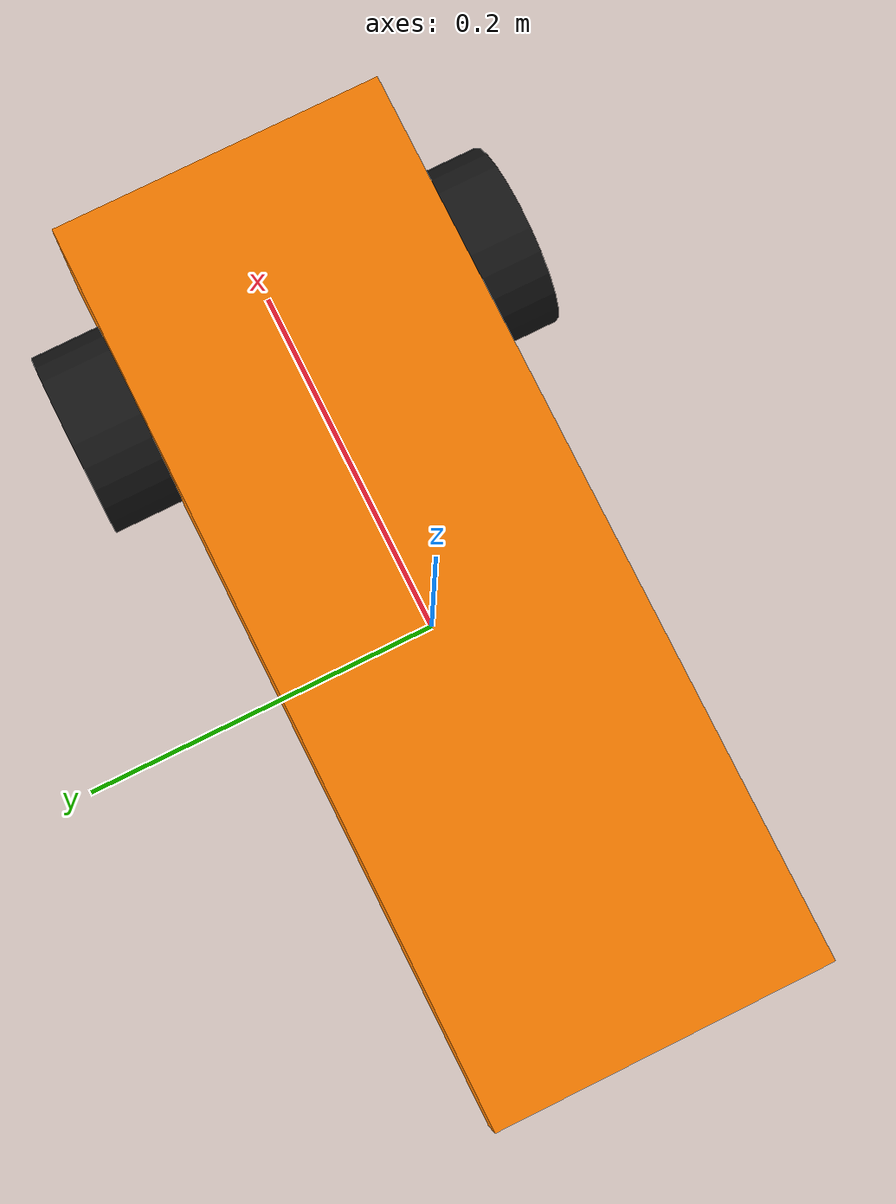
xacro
<?xml version='1.0'?>

<robot name="racer_test"
  xmlns:xacro="http://www.ros.org/wiki/xacro">

  <xacro:arg name="simulation" default="false"/>

  <xacro:if value="$(arg simulation)">
    <xacro:include filename="$(find racer_description)/urdf/racer_plugins.gazebo" />
  </xacro:if>

  <xacro:property name="bodySizeL" value="0.49"/>
  <xacro:property name="bodySizeB" value="0.18"/>
  <xacro:property name="bodySizeH" value="0.1"/>
  <xacro:property name="bodyMass" value="3.5"/>

  <xacro:property name="wheel_radius" value="0.05" />
  <xacro:property name="wheel_height" value="0.045" />
  <xacro:property name="wheel_mass" value="0.2" />

  <link name="base_link" />

  <joint name="base_link_joint" type="fixed">
    <origin xyz="0 0 0.05" rpy="0 0 0" />
    <parent link="base_link" />
    <child link="chassis" />
  </joint>

  <!--  Main Body with basic geometry -->
  <link name='chassis'>
    <inertial>
      <mass value="${bodyMass}"/>
      <origin xyz="0 0 ${wheel_height/2}" rpy="0 0 0"/>
      <inertia ixx="0.1" ixy="0" ixz="0" iyy="0.1" iyz="0" izz="0.1"/>
    </inertial>

    <collision name='collision'>
      <origin xyz="0 0 ${wheel_height/2}" rpy="0 0 0"/>
      <geometry>
        <box size="${bodySizeL} ${bodySizeB} ${bodySizeH}"/>
      </geometry>
    </collision>

    <visual>
      <origin xyz="0 0 ${wheel_height/2}" rpy="0 0 0"/>
      <geometry>
        <box size="${bodySizeL} ${bodySizeB} ${bodySizeH}"/>
      </geometry>
      <material name="orange">
        <color rgba="1.0 0.5 0.0 1.0"/>
      </material>
    </visual>
  </link>

  <gazebo reference="chassis">
    <material>Gazebo/Orange</material>
  </gazebo>

  <!-- Simple wheels -->
  <link name="left_wheel_front">
    <inertial>
      <mass value="${wheel_mass}" />
      <origin xyz="0 0 0" rpy="${90*pi/180} 0 0"/>
      <inertia ixx="0.01" ixy="0" ixz="0" iyy="0.01" iyz="0" izz="0.01"/>
    </inertial>

    <collision>
      <origin xyz="0 0 0" rpy="${90*pi/180} 0 0" />
      <geometry>
        <cylinder length="${wheel_height}" radius="${wheel_radius}" />
      </geometry>
    </collision>

    <visual>
      <origin xyz="0 0 0" rpy="${90*pi/180} 0 0" />
      <geometry>
        <cylinder length="${wheel_height}" radius="${wheel_radius}" />
      </geometry>
      <material name="black">
        <color rgba="0.1 0.1 0.1 1.0"/>
      </material>
    </visual>
  </link>

  <gazebo reference="left_wheel_front">
    <material>Gazebo/Black</material>
  </gazebo>

  <joint name="left_wheel_front_hinge" type="continuous">
    <parent link="chassis"/>
    <child link="left_wheel_front"/>
    <origin xyz="0.16 0.1055 0" rpy="0 0 0" />
    <axis xyz="0 1 0" rpy="0 0 0" />
    <limit effort="20" velocity="500"/>
  </joint>

  <!-- Right front wheel -->
  <link name="right_wheel_front">
    <inertial>
      <mass value="${wheel_mass}" />
      <origin xyz="0 0 0" rpy="${90*pi/180} 0 0"/>
      <inertia ixx="0.01" ixy="0" ixz="0" iyy="0.01" iyz="0" izz="0.01"/>
    </inertial>

    <collision>
      <origin xyz="0 0 0" rpy="${90*pi/180} 0 0" />
      <geometry>
        <cylinder length="${wheel_height}" radius="${wheel_radius}" />
      </geometry>
    </collision>

    <visual>
      <origin xyz="0 0 0" rpy="${90*pi/180} 0 0" />
      <geometry>
        <cylinder length="${wheel_height}" radius="${wheel_radius}" />
      </geometry>
      <material name="black">
        <color rgba="0.1 0.1 0.1 1.0"/>
      </material>
    </visual>
  </link>

  <gazebo reference="right_wheel_front">
    <material>Gazebo/Black</material>
  </gazebo>

  <joint name="right_wheel_front_hinge" type="continuous">
    <parent link="chassis"/>
    <child link="right_wheel_front"/>
    <origin xyz="0.16 -0.1055 0" rpy="0 0 0" />
    <axis xyz="0 1 0" rpy="0 0 0" />
    <limit effort="20" velocity="500"/>
  </joint>

</robot>
